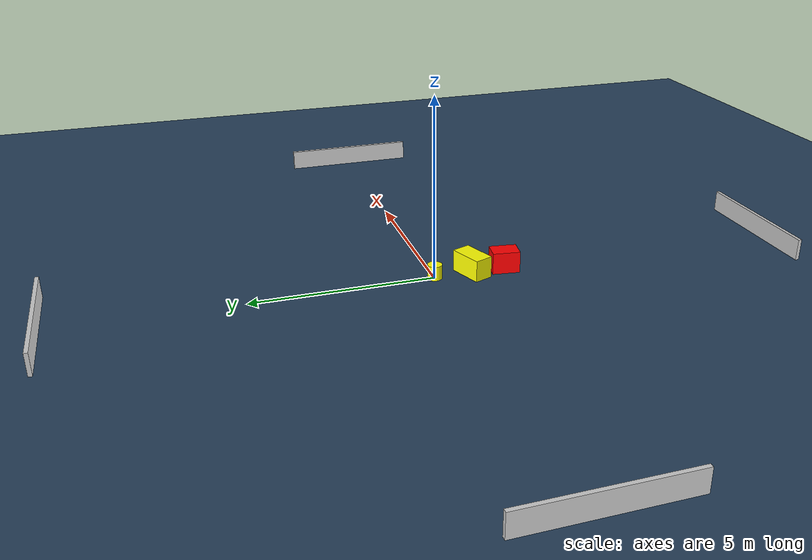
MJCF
<?xml version="1.0" ?>
<mujoco model="generated_environment">
  <option timestep="0.01" integrator="RK4" cone="elliptic"/>
  <default>
    <geom density="1"/>
  </default>
  <asset>
    <texture builtin="gradient" height="3072" name="skybox" rgb1="0.3 0.5 0.7" rgb2="0 0 0" type="skybox" width="512"/>
    <texture builtin="checker" height="300" name="groundplane" rgb1="0.2 0.3 0.4" rgb2="0.1 0.2 0.3" type="2d" width="300"/>
    <material name="groundplane" reflectance="0.2" texrepeat="5 5" texture="groundplane"/>
  </asset>
  <worldbody>
    <light dir="0 0 -1" directional="true" pos="0 0 1.5"/>
    <geom condim="3" friction="0.5 0.005 0.001" material="groundplane" name="floor" pos="0 0 0" size="0 0 0.05" type="plane"/>
    <body name="walls">
      <geom name="wall_1" condim="4" pos="-10.0 0.0 0.3" rgba="0.800000011920929 0.800000011920929 0.800000011920929 1.0" size="0.05 2.0 0.3" type="box"/>
      <geom name="wall_2" condim="4" pos="10.0 0.0 0.3" rgba="0.800000011920929 0.800000011920929 0.800000011920929 1.0" size="0.05 2.0 0.3" type="box"/>
      <geom name="wall_3" condim="4" pos="0.0 -10.0 0.3" rgba="0.800000011920929 0.800000011920929 0.800000011920929 1.0" size="2.0 0.05 0.3" type="box"/>
      <geom name="wall_4" condim="4" pos="0.0 10.0 0.3" rgba="0.800000011920929 0.800000011920929 0.800000011920929 1.0" size="2.0 0.05 0.3" type="box"/>
    </body>
    <body name="robot">
      <joint name="joint_x" type="slide" pos="0 0 0" axis="1 0 0"/>
      <joint name="joint_y" type="slide" pos="0 0 0" axis="0 1 0"/>
      <geom name="robot" type="cylinder" pos="0.0 0.0 0.2" size="0.2 0.2 0.0" mass="5.0" friction="1.0 0.005 0.0001" condim="4" rgba="1.0 1.0 0.0 1.0"/>
    </body>
    <body name="obstacle_1_movable">
      <geom name="obstacle_1_movable" condim="4" pos="-0.04366336043924025 -1.0493730122294564 0.3" euler="0 0 20.661409984479548" friction="0.0 0.005 0.001" rgba="1.0 1.0 0.0 1.0" size="0.4833914102898001 0.2606703784498041 0.3" type="box" mass="0.1"/>
      <joint type="free"/>
    </body>
    <body name="obstacle_2_static">
      <geom name="obstacle_2_static" condim="4" pos="-0.06212554879076053 -1.9680631652967706 0.3" euler="0 0 352.49368707809026" friction="0.0 0.005 0.001" rgba="1.0 0.0 0.0 1.0" size="0.2635668328458985 0.3767606180071217 0.3" type="box"/>
    </body>
  </worldbody>
  <actuator>
    <motor name="actuator_x" joint="joint_x" gear="1" ctrlrange="-1 1"/>
    <motor name="actuator_y" joint="joint_y" gear="1" ctrlrange="-1 1"/>
  </actuator>
</mujoco>
